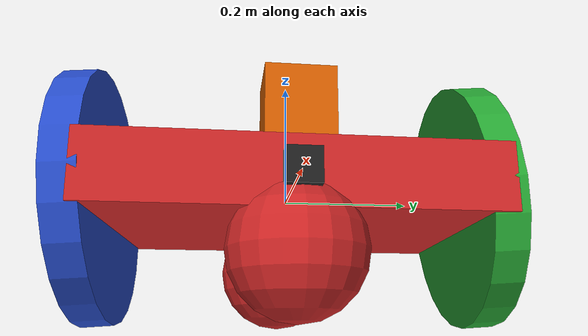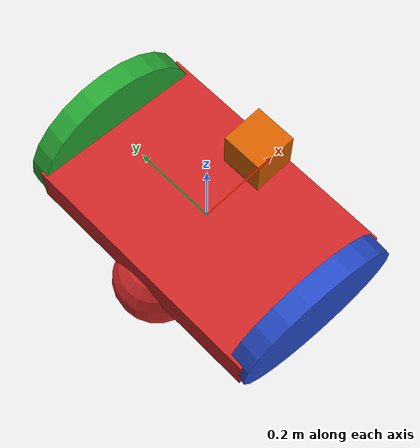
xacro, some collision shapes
<?xml version='1.0'?>

<robot name="my_robot" xmlns:xacro="http://www.ros.org/wiki/xacro">
<xacro:include filename="$(find my_robot)/urdf/my_robot.gazebo" />
  <link name="robot_footprint"></link>

  <joint name="robot_footprint_joint" type="fixed">
    <origin xyz="0 0 0" rpy="0 0 0" />
    <parent link="robot_footprint"/>
    <child link="chassis" />
  </joint>

  <link name='chassis'>
    <pose>0 0 0.1 0 0 0</pose>

    <inertial>
      <mass value="15.0"/>
      <origin xyz="0.0 0 0" rpy=" 0 0 0"/>
      <inertia
          ixx="0.1" ixy="0" ixz="0"
          iyy="0.1" iyz="0"
          izz="0.1"
      />
    </inertial>

    <collision name='collision'>
      <origin xyz="0 0 0" rpy=" 0 0 0"/>
      <geometry>
        <box size="0.4 0.6 0.1"/>
      </geometry>
    </collision>

    <visual name='chassis_visual'>
      <origin xyz="0 0 0" rpy=" 0 0 0"/>
      <geometry>
        <box size="0.4 0.6 0.1"/>
      </geometry>
    </visual>

    <collision name='back_caster_collision'>
      <origin xyz="-0.15 0 -0.1" rpy=" 0 0 0"/>
      <geometry>
        <sphere radius="0.100"/>
      </geometry>
    </collision>

    <visual name='back_caster_visual'>
      <origin xyz="-0.15 0 -0.1" rpy=" 0 0 0"/>
      <geometry>
        <sphere radius="0.10"/>
      </geometry>
    </visual>

    <collision name='front_caster_collision'>
      <origin xyz="0.15 0 -0.1" rpy=" 0 0 0"/>
      <geometry>
        <sphere radius="0.100"/>
      </geometry>
    </collision>

    <visual name='front_caster_visual'>
      <origin xyz="0.15 0 -0.1" rpy=" 0 0 0"/>
      <geometry>
        <sphere radius="0.10"/>
      </geometry>
    </visual>

  </link>

  <link name="left_wheel">
    <collision>
        <origin xyz="0 0 0" rpy="0 1.507 1.507"/>
        <geometry>
            <cylinder radius="0.2" length="0.05"/>
        </geometry>
    </collision>
    <inertial>
        <origin xyz="0 0 0" rpy="0 1.507 1.507"/>
        <mass value="5.0"/>
        <inertia
            ixx="0.1" ixy="0" ixz="0"
            iyy="0.1" iyz="0"
            izz="0.1"
        />
    </inertial>
    <visual>
        <origin xyz="0 0 0" rpy="0 1.507 1.507"/>
        <geometry>
            <cylinder radius="0.2" length="0.05"/>
        </geometry>
    </visual>
  </link>

  <link name="right_wheel">
    <collision>
        <origin xyz="0 0 0" rpy="0 1.507 1.507"/>
        <geometry>
            <cylinder radius="0.2" length="0.05"/>
        </geometry>
    </collision>
    <inertial>
        <origin xyz="0 0 0" rpy="0 1.507 1.507"/>
        <mass value="5.0"/>
        <inertia
            ixx="0.1" ixy="0" ixz="0"
            iyy="0.1" iyz="0"
            izz="0.1"
        />
    </inertial>
    <visual>
        <origin xyz="0 0 0" rpy="0 1.507 1.507"/>
        <geometry>
            <cylinder radius="0.2" length="0.05"/>
        </geometry>
    </visual>
  </link> -->

  <joint type="continuous" name="left_wheel_hinge">
    <origin xyz="0 0.3 0" rpy="0 0 0"/>
    <child link="left_wheel"/>
    <parent link="chassis"/>
    <axis xyz="0 1 0" rpy="0 0 0"/>
    <limit effort="10000" velocity="1000"/>
    <dynamics damping="1.0" friction="1.0"/>
  </joint>

  <joint type="continuous" name="right_wheel_hinge">
    <origin xyz="0 -0.3 0" rpy="0 0 0"/>
    <child link="right_wheel"/>
    <parent link="chassis"/>
    <axis xyz="0 1 0" rpy="0 0 0"/>
    <limit effort="10000" velocity="1000"/>
    <dynamics damping="1.0" friction="1.0"/>
  </joint>

  <link name="camera">
    <origin xyz="0 0 0" rpy="0 0 0"/>
    <collision>
        <geometry>
            <box size="0.05 0.05 0.05"/>
        </geometry>
    </collision>
    <inertial>
        <mass value="0.1"/>
        <box_inertia m="0.1" x="0.05" y="0.05" z="0.05"/>
        <inertia
            ixx="1e-6" ixy="0" ixz="0"
            iyy="1e-6" iyz="0"
            izz="1e-6"
        />
    </inertial>
    <visual>
        <geometry>
            <box size="0.05 0.05 0.05"/>
        </geometry>
    </visual>
  </link>

  <joint type="fixed" name="camera_joint">
    <origin xyz="0.2 0 0" rpy="0 0 0"/>
    <child link="camera"/>
    <parent link="chassis"/>
    <axis xyz="0 1 0"/>
  </joint>

  <link name="hokuyo">
    <origin xyz="0 0 0" rpy="0 0 0"/>
    <collision>
        <geometry>
            <box size="0.1 0.1 0.1"/>
        </geometry>
    </collision>
    <inertial>
        <mass value="1e-5"/>
        <inertia
            ixx="1e-6" ixy="0" ixz="0"
            iyy="1e-6" iyz="0"
            izz="1e-6"
        />
    </inertial>
    <visual>
        <geometry>
            <mesh filename="package://my_robot/meshes/hokuyo.dae"/>
        </geometry>
    </visual>
  </link>

  <joint type="fixed" name="hokuyo_joint">
    <origin xyz="0.15 0 0.1" rpy="0 0 0"/>
    <child link="hokuyo"/>
    <parent link="chassis"/>
    <axis xyz="0 1 0"/>
  </joint>

<!-- Test colors -->
  <gazebo reference="left_wheel">
    <material>Gazebo/Green</material>
  </gazebo>
  <gazebo reference="right_wheel">
    <material>Gazebo/Blue</material>
  </gazebo>
    <gazebo reference="camera">
    <material>Gazebo/Black</material>
  </gazebo>
    <gazebo reference="chassis">
    <material>Gazebo/Red</material>
  </gazebo>

</robot>
